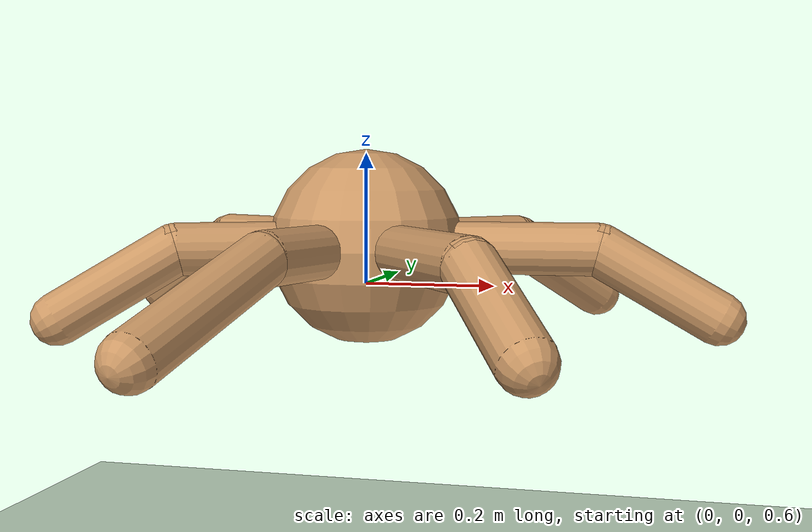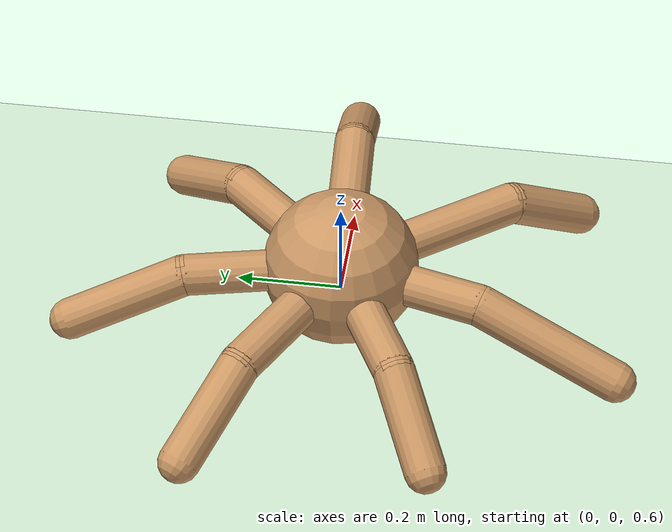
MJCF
<mujoco model="mutant_ant">
  <compiler angle="degree" coordinate="local" inertiafromgeom="true"/>
  <option integrator="RK4" timestep="0.01"/>
  <default>
    <joint armature="1" damping="1" limited="true"/>
    <geom conaffinity="1" condim="3" density="5.0" friction="1 0.5 0.5" margin="0.01" rgba="0.8 0.6 0.4 1"/>
  </default>
  <asset>
    <texture builtin="checker" height="512" name="texplane" rgb1=".2 .3 .4" rgb2=".1 0.15 0.2" type="2d" width="512"/>
    <material name="MatPlane" reflectance="0.5" shininess="1" specular="1" texrepeat="60 60" texture="texplane"/>
  </asset>
  <worldbody>
    <light cutoff="100" diffuse="1 1 1" dir="-0 0 -1.3" directional="true" exponent="1" pos="0 0 1.3" specular=".1 .1 .1"/>
    <geom conaffinity="1" condim="3" material="MatPlane" name="floor" pos="0 0 0" rgba="0.8 0.9 0.8 1" size="40 40 40" type="plane"/>
    <body name="torso" pos="0 0 0.657">
      <camera name="track" mode="trackcom" pos="0 -3 2.0" euler="60 0 0"/>
      <freejoint name="root"/>
      <geom name="torso_geom" pos="0 0 0" size="0.15" type="sphere"/>
      <body name="leg_0" pos="0 0 0" euler="0 0 3.331">
        <geom fromto="0.0 0.0 0.0 0.1 0.0 0.0" name="aux_0_geom" size="0.04" type="capsule"/>
        <body name="leg_0_aux" pos="0.1 0.0 0">
          <joint axis="0 0 1" name="hip_0" pos="0.0 0.0 0.0" range="-26.899 31.617" type="hinge"/>
          <geom fromto="0.0 0.0 0.0 0.255 0.0 0.0" name="thigh_0_geom" size="0.04" type="capsule"/>
          <body pos="0.255 0.0 0" name="leg_0_ankle">
            <joint axis="0 1 0" name="ankle_0" pos="0.0 0.0 0.0" range="33.177 65.352" type="hinge"/>
            <geom fromto="0.0 0.0 0.0 0.175 0.0 -0.1" name="calf_0_geom" size="0.04" type="capsule"/>
          </body>
        </body>
      </body>
      <body name="leg_1" pos="0 0 0" euler="0 0 48.253">
        <geom fromto="0.0 0.0 0.0 0.1 0.0 0.0" name="aux_1_geom" size="0.04" type="capsule"/>
        <body name="leg_1_aux" pos="0.1 0.0 0">
          <joint axis="0 0 1" name="hip_1" pos="0.0 0.0 0.0" range="-33.363 31.412" type="hinge"/>
          <geom fromto="0.0 0.0 0.0 0.200 0.0 0.0" name="thigh_1_geom" size="0.04" type="capsule"/>
          <body pos="0.200 0.0 0" name="leg_1_ankle">
            <joint axis="0 1 0" name="ankle_1" pos="0.0 0.0 0.0" range="31.674 76.299" type="hinge"/>
            <geom fromto="0.0 0.0 0.0 0.181 0.0 -0.1" name="calf_1_geom" size="0.04" type="capsule"/>
          </body>
        </body>
      </body>
      <body name="leg_2" pos="0 0 0" euler="0 0 102.266">
        <geom fromto="0.0 0.0 0.0 0.1 0.0 0.0" name="aux_2_geom" size="0.04" type="capsule"/>
        <body name="leg_2_aux" pos="0.1 0.0 0">
          <joint axis="0 0 1" name="hip_2" pos="0.0 0.0 0.0" range="-25.557 26.824" type="hinge"/>
          <geom fromto="0.0 0.0 0.0 0.199 0.0 0.0" name="thigh_2_geom" size="0.04" type="capsule"/>
          <body pos="0.199 0.0 0" name="leg_2_ankle">
            <joint axis="0 1 0" name="ankle_2" pos="0.0 0.0 0.0" range="24.696 77.922" type="hinge"/>
            <geom fromto="0.0 0.0 0.0 0.223 0.0 -0.1" name="calf_2_geom" size="0.04" type="capsule"/>
          </body>
        </body>
      </body>
      <body name="leg_3" pos="0 0 0" euler="0 0 151.888">
        <geom fromto="0.0 0.0 0.0 0.1 0.0 0.0" name="aux_3_geom" size="0.04" type="capsule"/>
        <body name="leg_3_aux" pos="0.1 0.0 0">
          <joint axis="0 0 1" name="hip_3" pos="0.0 0.0 0.0" range="-25.651 33.128" type="hinge"/>
          <geom fromto="0.0 0.0 0.0 0.221 0.0 0.0" name="thigh_3_geom" size="0.04" type="capsule"/>
          <body pos="0.221 0.0 0" name="leg_3_ankle">
            <joint axis="0 1 0" name="ankle_3" pos="0.0 0.0 0.0" range="28.593 60.263" type="hinge"/>
            <geom fromto="0.0 0.0 0.0 0.187 0.0 -0.1" name="calf_3_geom" size="0.04" type="capsule"/>
          </body>
        </body>
      </body>
      <body name="leg_4" pos="0 0 0" euler="0 0 207.199">
        <geom fromto="0.0 0.0 0.0 0.1 0.0 0.0" name="aux_4_geom" size="0.04" type="capsule"/>
        <body name="leg_4_aux" pos="0.1 0.0 0">
          <joint axis="0 0 1" name="hip_4" pos="0.0 0.0 0.0" range="-30.769 29.189" type="hinge"/>
          <geom fromto="0.0 0.0 0.0 0.192 0.0 0.0" name="thigh_4_geom" size="0.04" type="capsule"/>
          <body pos="0.192 0.0 0" name="leg_4_ankle">
            <joint axis="0 1 0" name="ankle_4" pos="0.0 0.0 0.0" range="36.016 62.508" type="hinge"/>
            <geom fromto="0.0 0.0 0.0 0.172 0.0 -0.1" name="calf_4_geom" size="0.04" type="capsule"/>
          </body>
        </body>
      </body>
      <body name="leg_5" pos="0 0 0" euler="0 0 255.700">
        <geom fromto="0.0 0.0 0.0 0.1 0.0 0.0" name="aux_5_geom" size="0.04" type="capsule"/>
        <body name="leg_5_aux" pos="0.1 0.0 0">
          <joint axis="0 0 1" name="hip_5" pos="0.0 0.0 0.0" range="-26.625 25.007" type="hinge"/>
          <geom fromto="0.0 0.0 0.0 0.182 0.0 0.0" name="thigh_5_geom" size="0.04" type="capsule"/>
          <body pos="0.182 0.0 0" name="leg_5_ankle">
            <joint axis="0 1 0" name="ankle_5" pos="0.0 0.0 0.0" range="29.091 70.088" type="hinge"/>
            <geom fromto="0.0 0.0 0.0 0.275 0.0 -0.1" name="calf_5_geom" size="0.04" type="capsule"/>
          </body>
        </body>
      </body>
      <body name="leg_6" pos="0 0 0" euler="0 0 305.704">
        <geom fromto="0.0 0.0 0.0 0.1 0.0 0.0" name="aux_6_geom" size="0.04" type="capsule"/>
        <body name="leg_6_aux" pos="0.1 0.0 0">
          <joint axis="0 0 1" name="hip_6" pos="0.0 0.0 0.0" range="-30.266 25.515" type="hinge"/>
          <geom fromto="0.0 0.0 0.0 0.277 0.0 0.0" name="thigh_6_geom" size="0.04" type="capsule"/>
          <body pos="0.277 0.0 0" name="leg_6_ankle">
            <joint axis="0 1 0" name="ankle_6" pos="0.0 0.0 0.0" range="24.534 68.656" type="hinge"/>
            <geom fromto="0.0 0.0 0.0 0.160 0.0 -0.1" name="calf_6_geom" size="0.04" type="capsule"/>
          </body>
        </body>
      </body>
    </body>
  </worldbody>
  <actuator>
    <motor ctrllimited="true" ctrlrange="-1.0 1.0" joint="hip_0" gear="30"/>
    <motor ctrllimited="true" ctrlrange="-1.0 1.0" joint="ankle_0" gear="30"/>
    <motor ctrllimited="true" ctrlrange="-1.0 1.0" joint="hip_1" gear="30"/>
    <motor ctrllimited="true" ctrlrange="-1.0 1.0" joint="ankle_1" gear="30"/>
    <motor ctrllimited="true" ctrlrange="-1.0 1.0" joint="hip_2" gear="30"/>
    <motor ctrllimited="true" ctrlrange="-1.0 1.0" joint="ankle_2" gear="30"/>
    <motor ctrllimited="true" ctrlrange="-1.0 1.0" joint="hip_3" gear="30"/>
    <motor ctrllimited="true" ctrlrange="-1.0 1.0" joint="ankle_3" gear="30"/>
    <motor ctrllimited="true" ctrlrange="-1.0 1.0" joint="hip_4" gear="30"/>
    <motor ctrllimited="true" ctrlrange="-1.0 1.0" joint="ankle_4" gear="30"/>
    <motor ctrllimited="true" ctrlrange="-1.0 1.0" joint="hip_5" gear="30"/>
    <motor ctrllimited="true" ctrlrange="-1.0 1.0" joint="ankle_5" gear="30"/>
    <motor ctrllimited="true" ctrlrange="-1.0 1.0" joint="hip_6" gear="30"/>
    <motor ctrllimited="true" ctrlrange="-1.0 1.0" joint="ankle_6" gear="30"/>
  </actuator>
</mujoco>
